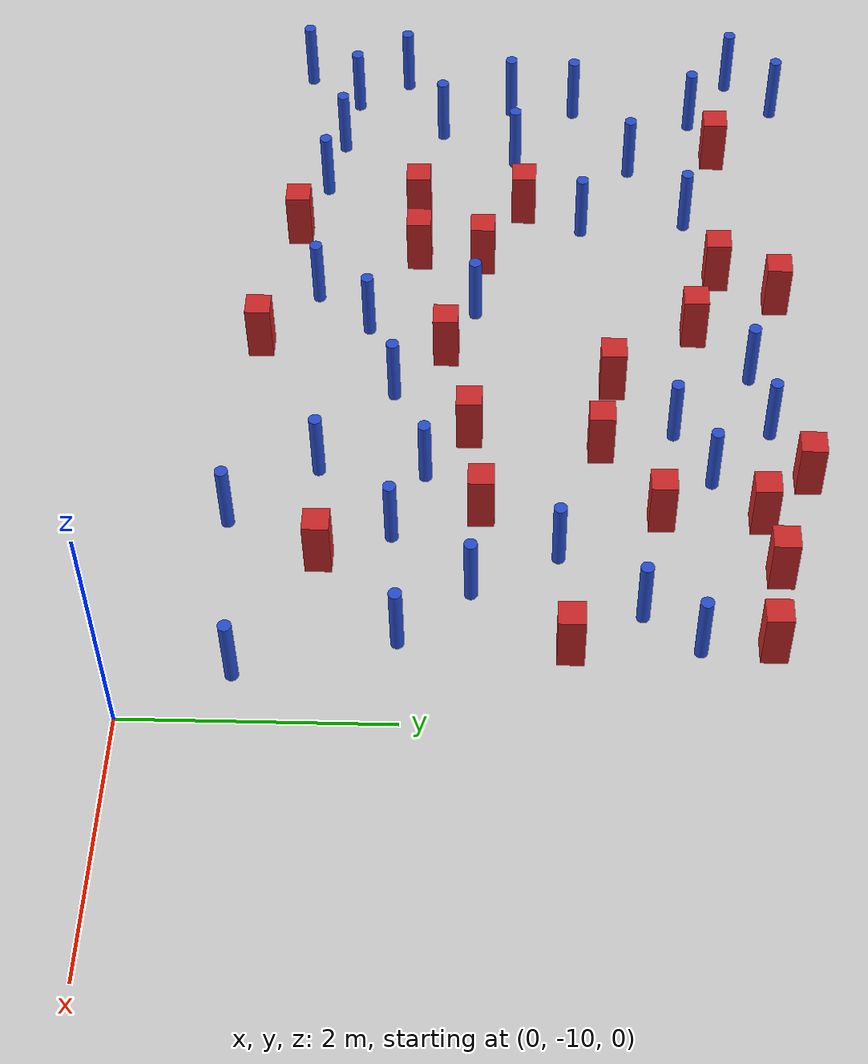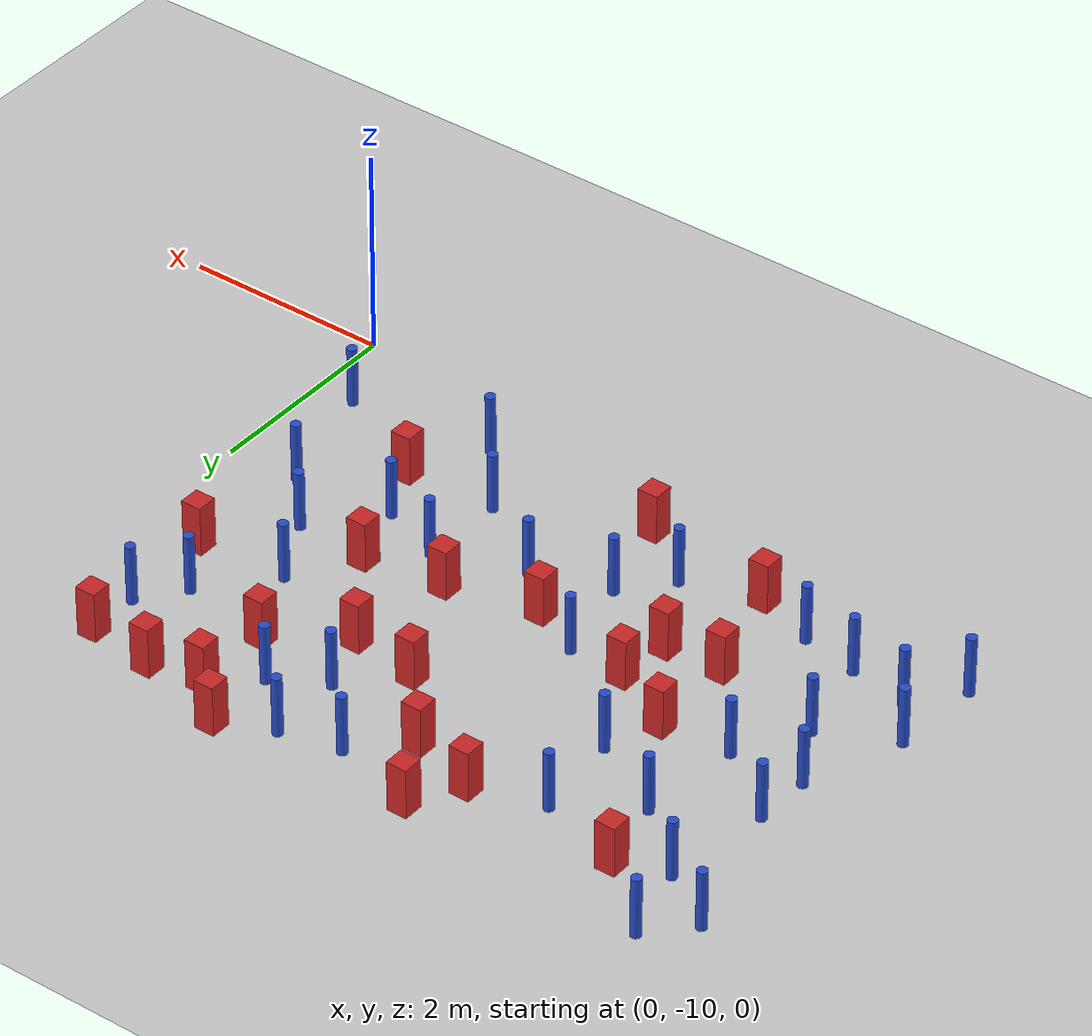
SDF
<sdf version="1.6">
 <world name="default">
  <model name="ground_plane">
   <static>1</static>
   <link name="link">
    <collision name="collision">
     <geometry><plane><normal>0 0 1</normal><size>100 100</size></plane></geometry>
     <surface><friction><ode><mu>100</mu><mu2>50</mu2></ode></friction></surface>
    </collision>
    <visual name="visual">
     <cast_shadows>0</cast_shadows>
     <geometry><plane><normal>0 0 1</normal><size>100 100</size></plane></geometry>
     <material>
      <ambient>1.0 1.0 1.0 1.0</ambient>
      <diffuse>0.8 0.8 0.8 1.0</diffuse>
      <specular>0.01 0.01 0.01 1.000000</specular>
     </material>
    </visual>
   </link>
  </model>
  <model name="square_post_obstacle3">
   <static>true</static>
   <pose>-0.633796371939 -6.8029401788 1.91545236811e-07 -7.35059704564e-06 1.12565212e-07 2.39332434364e-05</pose>
   <link name="link">
    <pose>0 0 0.25 0 -0 0</pose>
    <inertial>
     <mass>100</mass>
     <inertia>
      <ixx>0.166667</ixx>
      <ixy>0</ixy>
      <ixz>0</ixz>
      <iyy>0.166667</iyy>
      <iyz>0</iyz>
      <izz>0.166667</izz>
     </inertia>
    </inertial>
    <collision name="collision"><geometry><box><size>.2 .2 .5</size></box></geometry></collision>
    <visual name="visual">
     <geometry><box><size>.2 .2 .5</size></box></geometry>
     <material>
      <script><name>Gazebo/Red</name><uri>file://media/materials/scripts/gazebo.material</uri></script>
     </material>
    </visual>
   </link>
  </model>
  <model name="square_post_obstacle7">
   <static>true</static>
   <pose>-1.43258210814 -8.66387455334 1.91545236811e-07 -7.35059704564e-06 1.12565212e-07 2.39332434364e-05</pose>
   <link name="link">
    <pose>0 0 0.25 0 -0 0</pose>
    <inertial>
     <mass>100</mass>
     <inertia>
      <ixx>0.166667</ixx>
      <ixy>0</ixy>
      <ixz>0</ixz>
      <iyy>0.166667</iyy>
      <iyz>0</iyz>
      <izz>0.166667</izz>
     </inertia>
    </inertial>
    <collision name="collision"><geometry><box><size>.2 .2 .5</size></box></geometry></collision>
    <visual name="visual">
     <geometry><box><size>.2 .2 .5</size></box></geometry>
     <material>
      <script><name>Gazebo/Red</name><uri>file://media/materials/scripts/gazebo.material</uri></script>
     </material>
    </visual>
   </link>
  </model>
  <model name="square_post_obstacle8">
   <static>true</static>
   <pose>-2.53879268032 -6.56432131478 1.91545236811e-07 -7.35059704564e-06 1.12565212e-07 2.39332434364e-05</pose>
   <link name="link">
    <pose>0 0 0.25 0 -0 0</pose>
    <inertial>
     <mass>100</mass>
     <inertia>
      <ixx>0.166667</ixx>
      <ixy>0</ixy>
      <ixz>0</ixz>
      <iyy>0.166667</iyy>
      <iyz>0</iyz>
      <izz>0.166667</izz>
     </inertia>
    </inertial>
    <collision name="collision"><geometry><box><size>.2 .2 .5</size></box></geometry></collision>
    <visual name="visual">
     <geometry><box><size>.2 .2 .5</size></box></geometry>
     <material>
      <script><name>Gazebo/Red</name><uri>file://media/materials/scripts/gazebo.material</uri></script>
     </material>
    </visual>
   </link>
  </model>
  <model name="pole_obstacle6">
   <static>true</static>
   <pose>-6.56766878308 -6.76496728343 7.38925637345e-09 -8.47170692796e-08 1.24976764786e-08 -1.74513093032e-07</pose>
   <link name="link">
    <pose>0 0 0.3 0 -0 0</pose>
    <inertial>
     <mass>1</mass>
     <inertia><ixx>0.145833</ixx><ixy>0</ixy><ixz>0</ixz><iyy>0.145833</iyy><iyz>0</iyz><izz>0.125</izz></inertia>
    </inertial>
    <collision name="collision">
     <geometry><cylinder><radius>0.05</radius><length>.6</length></cylinder></geometry>
    </collision>
    <visual name="visual">
     <geometry><cylinder><radius>0.05</radius><length>.6</length></cylinder></geometry>
     <material>
      <script><name>Gazebo/Blue</name><uri>file://media/materials/scripts/gazebo.material</uri></script>
     </material>
    </visual>
   </link>
  </model>
  <model name="square_post_obstacle14">
   <static>true</static>
   <pose>-2.67159025851 -7.58281791326 1.91545236811e-07 -7.35059704564e-06 1.12565212e-07 2.39332434364e-05</pose>
   <link name="link">
    <pose>0 0 0.25 0 -0 0</pose>
    <inertial>
     <mass>100</mass>
     <inertia>
      <ixx>0.166667</ixx>
      <ixy>0</ixy>
      <ixz>0</ixz>
      <iyy>0.166667</iyy>
      <iyz>0</iyz>
      <izz>0.166667</izz>
     </inertia>
    </inertial>
    <collision name="collision"><geometry><box><size>.2 .2 .5</size></box></geometry></collision>
    <visual name="visual">
     <geometry><box><size>.2 .2 .5</size></box></geometry>
     <material>
      <script><name>Gazebo/Red</name><uri>file://media/materials/scripts/gazebo.material</uri></script>
     </material>
    </visual>
   </link>
  </model>
  <model name="square_post_obstacle15">
   <static>true</static>
   <pose>-5.23057087087 -7.19121798113 1.91545236811e-07 -7.35059704564e-06 1.12565212e-07 2.39332434364e-05</pose>
   <link name="link">
    <pose>0 0 0.25 0 -0 0</pose>
    <inertial>
     <mass>100</mass>
     <inertia>
      <ixx>0.166667</ixx>
      <ixy>0</ixy>
      <ixz>0</ixz>
      <iyy>0.166667</iyy>
      <iyz>0</iyz>
      <izz>0.166667</izz>
     </inertia>
    </inertial>
    <collision name="collision"><geometry><box><size>.2 .2 .5</size></box></geometry></collision>
    <visual name="visual">
     <geometry><box><size>.2 .2 .5</size></box></geometry>
     <material>
      <script><name>Gazebo/Red</name><uri>file://media/materials/scripts/gazebo.material</uri></script>
     </material>
    </visual>
   </link>
  </model>
  <model name="square_post_obstacle16">
   <static>true</static>
   <pose>-3.61521142471 -9.28834033057 1.91545236811e-07 -7.35059704564e-06 1.12565212e-07 2.39332434364e-05</pose>
   <link name="link">
    <pose>0 0 0.25 0 -0 0</pose>
    <inertial>
     <mass>100</mass>
     <inertia>
      <ixx>0.166667</ixx>
      <ixy>0</ixy>
      <ixz>0</ixz>
      <iyy>0.166667</iyy>
      <iyz>0</iyz>
      <izz>0.166667</izz>
     </inertia>
    </inertial>
    <collision name="collision"><geometry><box><size>.2 .2 .5</size></box></geometry></collision>
    <visual name="visual">
     <geometry><box><size>.2 .2 .5</size></box></geometry>
     <material>
      <script><name>Gazebo/Red</name><uri>file://media/materials/scripts/gazebo.material</uri></script>
     </material>
    </visual>
   </link>
  </model>
  <model name="square_post_obstacle22">
   <static>true</static>
   <pose>-4.64862744228 -8.05214864255 1.91545236811e-07 -7.35059704564e-06 1.12565212e-07 2.39332434364e-05</pose>
   <link name="link">
    <pose>0 0 0.25 0 -0 0</pose>
    <inertial>
     <mass>100</mass>
     <inertia>
      <ixx>0.166667</ixx>
      <ixy>0</ixy>
      <ixz>0</ixz>
      <iyy>0.166667</iyy>
      <iyz>0</iyz>
      <izz>0.166667</izz>
     </inertia>
    </inertial>
    <collision name="collision"><geometry><box><size>.2 .2 .5</size></box></geometry></collision>
    <visual name="visual">
     <geometry><box><size>.2 .2 .5</size></box></geometry>
     <material>
      <script><name>Gazebo/Red</name><uri>file://media/materials/scripts/gazebo.material</uri></script>
     </material>
    </visual>
   </link>
  </model>
  <model name="pole_obstacle14">
   <static>true</static>
   <pose>-5.02337090327 -6.70248612856 7.38925637345e-09 -8.47170692796e-08 1.24976764786e-08 -1.74513093032e-07</pose>
   <link name="link">
    <pose>0 0 0.3 0 -0 0</pose>
    <inertial>
     <mass>1</mass>
     <inertia><ixx>0.145833</ixx><ixy>0</ixy><ixz>0</ixz><iyy>0.145833</iyy><iyz>0</iyz><izz>0.125</izz></inertia>
    </inertial>
    <collision name="collision">
     <geometry><cylinder><radius>0.05</radius><length>.6</length></cylinder></geometry>
    </collision>
    <visual name="visual">
     <geometry><cylinder><radius>0.05</radius><length>.6</length></cylinder></geometry>
     <material>
      <script><name>Gazebo/Blue</name><uri>file://media/materials/scripts/gazebo.material</uri></script>
     </material>
    </visual>
   </link>
  </model>
  <model name="pole_obstacle16">
   <static>true</static>
   <pose>-6.42377104074 -5.73415301805 7.38925637345e-09 -8.47170692796e-08 1.24976764786e-08 -1.74513093032e-07</pose>
   <link name="link">
    <pose>0 0 0.3 0 -0 0</pose>
    <inertial>
     <mass>1</mass>
     <inertia><ixx>0.145833</ixx><ixy>0</ixy><ixz>0</ixz><iyy>0.145833</iyy><iyz>0</iyz><izz>0.125</izz></inertia>
    </inertial>
    <collision name="collision">
     <geometry><cylinder><radius>0.05</radius><length>.6</length></cylinder></geometry>
    </collision>
    <visual name="visual">
     <geometry><cylinder><radius>0.05</radius><length>.6</length></cylinder></geometry>
     <material>
      <script><name>Gazebo/Blue</name><uri>file://media/materials/scripts/gazebo.material</uri></script>
     </material>
    </visual>
   </link>
  </model>
  <model name="pole_obstacle18">
   <static>true</static>
   <pose>-2.72735987007 -5.99257990961 7.38925637345e-09 -8.47170692798e-08 1.24976765033e-08 -1.74513093019e-07</pose>
   <link name="link">
    <pose>0 0 0.3 0 -0 0</pose>
    <inertial>
     <mass>1</mass>
     <inertia><ixx>0.145833</ixx><ixy>0</ixy><ixz>0</ixz><iyy>0.145833</iyy><iyz>0</iyz><izz>0.125</izz></inertia>
    </inertial>
    <collision name="collision">
     <geometry><cylinder><radius>0.05</radius><length>.6</length></cylinder></geometry>
    </collision>
    <visual name="visual">
     <geometry><cylinder><radius>0.05</radius><length>.6</length></cylinder></geometry>
     <material>
      <script><name>Gazebo/Blue</name><uri>file://media/materials/scripts/gazebo.material</uri></script>
     </material>
    </visual>
   </link>
  </model>
  <model name="pole_obstacle27">
   <static>true</static>
   <pose>-5.50264626689 -8.87954455094 7.38925637345e-09 -8.471706928e-08 1.24976765081e-08 -1.74513093015e-07</pose>
   <link name="link">
    <pose>0 0 0.3 0 -0 0</pose>
    <inertial>
     <mass>1</mass>
     <inertia><ixx>0.145833</ixx><ixy>0</ixy><ixz>0</ixz><iyy>0.145833</iyy><iyz>0</iyz><izz>0.125</izz></inertia>
    </inertial>
    <collision name="collision">
     <geometry><cylinder><radius>0.05</radius><length>.6</length></cylinder></geometry>
    </collision>
    <visual name="visual">
     <geometry><cylinder><radius>0.05</radius><length>.6</length></cylinder></geometry>
     <material>
      <script><name>Gazebo/Blue</name><uri>file://media/materials/scripts/gazebo.material</uri></script>
     </material>
    </visual>
   </link>
  </model>
  <model name="square_post_obstacle33">
   <static>true</static>
   <pose>-4.93340911806 -9.07322151849 1.91545236811e-07 -7.35059704564e-06 1.12565212e-07 2.39332434364e-05</pose>
   <link name="link">
    <pose>0 0 0.25 0 -0 0</pose>
    <inertial>
     <mass>100</mass>
     <inertia>
      <ixx>0.166667</ixx>
      <ixy>0</ixy>
      <ixz>0</ixz>
      <iyy>0.166667</iyy>
      <iyz>0</iyz>
      <izz>0.166667</izz>
     </inertia>
    </inertial>
    <collision name="collision"><geometry><box><size>.2 .2 .5</size></box></geometry></collision>
    <visual name="visual">
     <geometry><box><size>.2 .2 .5</size></box></geometry>
     <material>
      <script><name>Gazebo/Red</name><uri>file://media/materials/scripts/gazebo.material</uri></script>
     </material>
    </visual>
   </link>
  </model>
  <model name="square_post_obstacle34">
   <static>true</static>
   <pose>-3.54040401404 -7.79301640265 1.91545236811e-07 -7.35059704564e-06 1.12565212e-07 2.39332434364e-05</pose>
   <link name="link">
    <pose>0 0 0.25 0 -0 0</pose>
    <inertial>
     <mass>100</mass>
     <inertia>
      <ixx>0.166667</ixx>
      <ixy>0</ixy>
      <ixz>0</ixz>
      <iyy>0.166667</iyy>
      <iyz>0</iyz>
      <izz>0.166667</izz>
     </inertia>
    </inertial>
    <collision name="collision"><geometry><box><size>.2 .2 .5</size></box></geometry></collision>
    <visual name="visual">
     <geometry><box><size>.2 .2 .5</size></box></geometry>
     <material>
      <script><name>Gazebo/Red</name><uri>file://media/materials/scripts/gazebo.material</uri></script>
     </material>
    </visual>
   </link>
  </model>
  <model name="pole_obstacle32">
   <static>true</static>
   <pose>-3.82748670154 -8.42909397978 7.38925637345e-09 -8.47170692799e-08 1.24976765012e-08 -1.74513093021e-07</pose>
   <link name="link">
    <pose>0 0 0.3 0 -0 0</pose>
    <inertial>
     <mass>1</mass>
     <inertia><ixx>0.145833</ixx><ixy>0</ixy><ixz>0</ixz><iyy>0.145833</iyy><iyz>0</iyz><izz>0.125</izz></inertia>
    </inertial>
    <collision name="collision">
     <geometry><cylinder><radius>0.05</radius><length>.6</length></cylinder></geometry>
    </collision>
    <visual name="visual">
     <geometry><cylinder><radius>0.05</radius><length>.6</length></cylinder></geometry>
     <material>
      <script><name>Gazebo/Blue</name><uri>file://media/materials/scripts/gazebo.material</uri></script>
     </material>
    </visual>
   </link>
  </model>
  <model name="pole_obstacle37">
   <static>true</static>
   <pose>-6.58584887799 -7.31621391962 7.38925637345e-09 -8.47170692796e-08 1.24976764786e-08 -1.74513093032e-07</pose>
   <link name="link">
    <pose>0 0 0.3 0 -0 0</pose>
    <inertial>
     <mass>1</mass>
     <inertia><ixx>0.145833</ixx><ixy>0</ixy><ixz>0</ixz><iyy>0.145833</iyy><iyz>0</iyz><izz>0.125</izz></inertia>
    </inertial>
    <collision name="collision">
     <geometry><cylinder><radius>0.05</radius><length>.6</length></cylinder></geometry>
    </collision>
    <visual name="visual">
     <geometry><cylinder><radius>0.05</radius><length>.6</length></cylinder></geometry>
     <material>
      <script><name>Gazebo/Blue</name><uri>file://media/materials/scripts/gazebo.material</uri></script>
     </material>
    </visual>
   </link>
  </model>
  <model name="pole_obstacle38">
   <static>true</static>
   <pose>-0.970440165887 -6.27427404457 7.38925637345e-09 -8.47170692799e-08 1.2497676509e-08 -1.74513093015e-07</pose>
   <link name="link">
    <pose>0 0 0.3 0 -0 0</pose>
    <inertial>
     <mass>1</mass>
     <inertia><ixx>0.145833</ixx><ixy>0</ixy><ixz>0</ixz><iyy>0.145833</iyy><iyz>0</iyz><izz>0.125</izz></inertia>
    </inertial>
    <collision name="collision">
     <geometry><cylinder><radius>0.05</radius><length>.6</length></cylinder></geometry>
    </collision>
    <visual name="visual">
     <geometry><cylinder><radius>0.05</radius><length>.6</length></cylinder></geometry>
     <material>
      <script><name>Gazebo/Blue</name><uri>file://media/materials/scripts/gazebo.material</uri></script>
     </material>
    </visual>
   </link>
  </model>
  <model name="pole_obstacle40">
   <static>true</static>
   <pose>-6.25011475079 -7.91060250939 7.38925637345e-09 -8.47170692796e-08 1.24976764786e-08 -1.74513093032e-07</pose>
   <link name="link">
    <pose>0 0 0.3 0 -0 0</pose>
    <inertial>
     <mass>1</mass>
     <inertia><ixx>0.145833</ixx><ixy>0</ixy><ixz>0</ixz><iyy>0.145833</iyy><iyz>0</iyz><izz>0.125</izz></inertia>
    </inertial>
    <collision name="collision">
     <geometry><cylinder><radius>0.05</radius><length>.6</length></cylinder></geometry>
    </collision>
    <visual name="visual">
     <geometry><cylinder><radius>0.05</radius><length>.6</length></cylinder></geometry>
     <material>
      <script><name>Gazebo/Blue</name><uri>file://media/materials/scripts/gazebo.material</uri></script>
     </material>
    </visual>
   </link>
  </model>
  <model name="pole_obstacle41">
   <static>true</static>
   <pose>-6.99080040517 -9.12771972824 7.38925637345e-09 -8.471706928e-08 1.24976765081e-08 -1.74513093015e-07</pose>
   <link name="link">
    <pose>0 0 0.3 0 -0 0</pose>
    <inertial>
     <mass>1</mass>
     <inertia><ixx>0.145833</ixx><ixy>0</ixy><ixz>0</ixz><iyy>0.145833</iyy><iyz>0</iyz><izz>0.125</izz></inertia>
    </inertial>
    <collision name="collision">
     <geometry><cylinder><radius>0.05</radius><length>.6</length></cylinder></geometry>
    </collision>
    <visual name="visual">
     <geometry><cylinder><radius>0.05</radius><length>.6</length></cylinder></geometry>
     <material>
      <script><name>Gazebo/Blue</name><uri>file://media/materials/scripts/gazebo.material</uri></script>
     </material>
    </visual>
   </link>
  </model>
  <model name="pole_obstacle43">
   <static>true</static>
   <pose>-6.93207534338 -8.24968939106 7.38925637345e-09 -8.471706928e-08 1.24976765081e-08 -1.74513093015e-07</pose>
   <link name="link">
    <pose>0 0 0.3 0 -0 0</pose>
    <inertial>
     <mass>1</mass>
     <inertia><ixx>0.145833</ixx><ixy>0</ixy><ixz>0</ixz><iyy>0.145833</iyy><iyz>0</iyz><izz>0.125</izz></inertia>
    </inertial>
    <collision name="collision">
     <geometry><cylinder><radius>0.05</radius><length>.6</length></cylinder></geometry>
    </collision>
    <visual name="visual">
     <geometry><cylinder><radius>0.05</radius><length>.6</length></cylinder></geometry>
     <material>
      <script><name>Gazebo/Blue</name><uri>file://media/materials/scripts/gazebo.material</uri></script>
     </material>
    </visual>
   </link>
  </model>
  <model name="square_post_obstacle52">
   <static>true</static>
   <pose>-1.88998071862 -7.47177497546 1.91545236811e-07 -7.35059704564e-06 1.12565212e-07 2.39332434364e-05</pose>
   <link name="link">
    <pose>0 0 0.25 0 -0 0</pose>
    <inertial>
     <mass>100</mass>
     <inertia>
      <ixx>0.166667</ixx>
      <ixy>0</ixy>
      <ixz>0</ixz>
      <iyy>0.166667</iyy>
      <iyz>0</iyz>
      <izz>0.166667</izz>
     </inertia>
    </inertial>
    <collision name="collision"><geometry><box><size>.2 .2 .5</size></box></geometry></collision>
    <visual name="visual">
     <geometry><box><size>.2 .2 .5</size></box></geometry>
     <material>
      <script><name>Gazebo/Red</name><uri>file://media/materials/scripts/gazebo.material</uri></script>
     </material>
    </visual>
   </link>
  </model>
  <model name="pole_obstacle54">
   <static>true</static>
   <pose>-6.63457276247 -8.67885523274 7.38925637345e-09 -8.471706928e-08 1.24976765081e-08 -1.74513093015e-07</pose>
   <link name="link">
    <pose>0 0 0.3 0 -0 0</pose>
    <inertial>
     <mass>1</mass>
     <inertia><ixx>0.145833</ixx><ixy>0</ixy><ixz>0</ixz><iyy>0.145833</iyy><iyz>0</iyz><izz>0.125</izz></inertia>
    </inertial>
    <collision name="collision">
     <geometry><cylinder><radius>0.05</radius><length>.6</length></cylinder></geometry>
    </collision>
    <visual name="visual">
     <geometry><cylinder><radius>0.05</radius><length>.6</length></cylinder></geometry>
     <material>
      <script><name>Gazebo/Blue</name><uri>file://media/materials/scripts/gazebo.material</uri></script>
     </material>
    </visual>
   </link>
  </model>
  <model name="pole_obstacle58">
   <static>true</static>
   <pose>-2.30951688588 -8.72986847748 7.38925637345e-09 -8.47170692793e-08 1.24976764408e-08 -1.74513093041e-07</pose>
   <link name="link">
    <pose>0 0 0.3 0 -0 0</pose>
    <inertial>
     <mass>1</mass>
     <inertia><ixx>0.145833</ixx><ixy>0</ixy><ixz>0</ixz><iyy>0.145833</iyy><iyz>0</iyz><izz>0.125</izz></inertia>
    </inertial>
    <collision name="collision">
     <geometry><cylinder><radius>0.05</radius><length>.6</length></cylinder></geometry>
    </collision>
    <visual name="visual">
     <geometry><cylinder><radius>0.05</radius><length>.6</length></cylinder></geometry>
     <material>
      <script><name>Gazebo/Blue</name><uri>file://media/materials/scripts/gazebo.material</uri></script>
     </material>
    </visual>
   </link>
  </model>
  <model name="pole_obstacle60">
   <static>true</static>
   <pose>-0.392709295785 -9.20889978899 7.38925637345e-09 -8.47170692796e-08 1.24976764724e-08 -1.74513093036e-07</pose>
   <link name="link">
    <pose>0 0 0.3 0 -0 0</pose>
    <inertial>
     <mass>1</mass>
     <inertia><ixx>0.145833</ixx><ixy>0</ixy><ixz>0</ixz><iyy>0.145833</iyy><iyz>0</iyz><izz>0.125</izz></inertia>
    </inertial>
    <collision name="collision">
     <geometry><cylinder><radius>0.05</radius><length>.6</length></cylinder></geometry>
    </collision>
    <visual name="visual">
     <geometry><cylinder><radius>0.05</radius><length>.6</length></cylinder></geometry>
     <material>
      <script><name>Gazebo/Blue</name><uri>file://media/materials/scripts/gazebo.material</uri></script>
     </material>
    </visual>
   </link>
  </model>
  <model name="pole_obstacle61">
   <static>true</static>
   <pose>-4.18943113816 -8.86491891618 7.38925637345e-09 -8.471706928e-08 1.24976765081e-08 -1.74513093015e-07</pose>
   <link name="link">
    <pose>0 0 0.3 0 -0 0</pose>
    <inertial>
     <mass>1</mass>
     <inertia><ixx>0.145833</ixx><ixy>0</ixy><ixz>0</ixz><iyy>0.145833</iyy><iyz>0</iyz><izz>0.125</izz></inertia>
    </inertial>
    <collision name="collision">
     <geometry><cylinder><radius>0.05</radius><length>.6</length></cylinder></geometry>
    </collision>
    <visual name="visual">
     <geometry><cylinder><radius>0.05</radius><length>.6</length></cylinder></geometry>
     <material>
      <script><name>Gazebo/Blue</name><uri>file://media/materials/scripts/gazebo.material</uri></script>
     </material>
    </visual>
   </link>
  </model>
  <model name="square_post_obstacle71">
   <static>true</static>
   <pose>-3.20281780658 -6.46564683576 1.91545236811e-07 -7.35059704564e-06 1.12565212e-07 2.39332434364e-05</pose>
   <link name="link">
    <pose>0 0 0.25 0 -0 0</pose>
    <inertial>
     <mass>100</mass>
     <inertia>
      <ixx>0.166667</ixx>
      <ixy>0</ixy>
      <ixz>0</ixz>
      <iyy>0.166667</iyy>
      <iyz>0</iyz>
      <izz>0.166667</izz>
     </inertia>
    </inertial>
    <collision name="collision"><geometry><box><size>.2 .2 .5</size></box></geometry></collision>
    <visual name="visual">
     <geometry><box><size>.2 .2 .5</size></box></geometry>
     <material>
      <script><name>Gazebo/Red</name><uri>file://media/materials/scripts/gazebo.material</uri></script>
     </material>
    </visual>
   </link>
  </model>
  <model name="pole_obstacle76">
   <static>true</static>
   <pose>-1.14901300805 -7.52991719057 7.38925637345e-09 -8.47170692799e-08 1.24976765033e-08 -1.74513093018e-07</pose>
   <link name="link">
    <pose>0 0 0.3 0 -0 0</pose>
    <inertial>
     <mass>1</mass>
     <inertia><ixx>0.145833</ixx><ixy>0</ixy><ixz>0</ixz><iyy>0.145833</iyy><iyz>0</iyz><izz>0.125</izz></inertia>
    </inertial>
    <collision name="collision">
     <geometry><cylinder><radius>0.05</radius><length>.6</length></cylinder></geometry>
    </collision>
    <visual name="visual">
     <geometry><cylinder><radius>0.05</radius><length>.6</length></cylinder></geometry>
     <material>
      <script><name>Gazebo/Blue</name><uri>file://media/materials/scripts/gazebo.material</uri></script>
     </material>
    </visual>
   </link>
  </model>
  <model name="pole_obstacle80">
   <static>true</static>
   <pose>-5.88958328572 -7.27211296316 7.38925637345e-09 -8.47170692796e-08 1.24976764786e-08 -1.74513093032e-07</pose>
   <link name="link">
    <pose>0 0 0.3 0 -0 0</pose>
    <inertial>
     <mass>1</mass>
     <inertia><ixx>0.145833</ixx><ixy>0</ixy><ixz>0</ixz><iyy>0.145833</iyy><iyz>0</iyz><izz>0.125</izz></inertia>
    </inertial>
    <collision name="collision">
     <geometry><cylinder><radius>0.05</radius><length>.6</length></cylinder></geometry>
    </collision>
    <visual name="visual">
     <geometry><cylinder><radius>0.05</radius><length>.6</length></cylinder></geometry>
     <material>
      <script><name>Gazebo/Blue</name><uri>file://media/materials/scripts/gazebo.material</uri></script>
     </material>
    </visual>
   </link>
  </model>
  <model name="pole_obstacle81">
   <static>true</static>
   <pose>-0.670090253356 -5.86630423676 7.38925637345e-09 -8.471706928e-08 1.24976765086e-08 -1.74513093015e-07</pose>
   <link name="link">
    <pose>0 0 0.3 0 -0 0</pose>
    <inertial>
     <mass>1</mass>
     <inertia><ixx>0.145833</ixx><ixy>0</ixy><ixz>0</ixz><iyy>0.145833</iyy><iyz>0</iyz><izz>0.125</izz></inertia>
    </inertial>
    <collision name="collision">
     <geometry><cylinder><radius>0.05</radius><length>.6</length></cylinder></geometry>
    </collision>
    <visual name="visual">
     <geometry><cylinder><radius>0.05</radius><length>.6</length></cylinder></geometry>
     <material>
      <script><name>Gazebo/Blue</name><uri>file://media/materials/scripts/gazebo.material</uri></script>
     </material>
    </visual>
   </link>
  </model>
  <model name="pole_obstacle82">
   <static>true</static>
   <pose>-4.01854339581 -7.57125822194 7.38925637345e-09 -8.47170692795e-08 1.24976764731e-08 -1.74513093035e-07</pose>
   <link name="link">
    <pose>0 0 0.3 0 -0 0</pose>
    <inertial>
     <mass>1</mass>
     <inertia><ixx>0.145833</ixx><ixy>0</ixy><ixz>0</ixz><iyy>0.145833</iyy><iyz>0</iyz><izz>0.125</izz></inertia>
    </inertial>
    <collision name="collision">
     <geometry><cylinder><radius>0.05</radius><length>.6</length></cylinder></geometry>
    </collision>
    <visual name="visual">
     <geometry><cylinder><radius>0.05</radius><length>.6</length></cylinder></geometry>
     <material>
      <script><name>Gazebo/Blue</name><uri>file://media/materials/scripts/gazebo.material</uri></script>
     </material>
    </visual>
   </link>
  </model>
  <model name="pole_obstacle86">
   <static>true</static>
   <pose>-6.97920305381 -5.37876725271 7.38925637345e-09 -8.47170692796e-08 1.24976764786e-08 -1.74513093032e-07</pose>
   <link name="link">
    <pose>0 0 0.3 0 -0 0</pose>
    <inertial>
     <mass>1</mass>
     <inertia><ixx>0.145833</ixx><ixy>0</ixy><ixz>0</ixz><iyy>0.145833</iyy><iyz>0</iyz><izz>0.125</izz></inertia>
    </inertial>
    <collision name="collision">
     <geometry><cylinder><radius>0.05</radius><length>.6</length></cylinder></geometry>
    </collision>
    <visual name="visual">
     <geometry><cylinder><radius>0.05</radius><length>.6</length></cylinder></geometry>
     <material>
      <script><name>Gazebo/Blue</name><uri>file://media/materials/scripts/gazebo.material</uri></script>
     </material>
    </visual>
   </link>
  </model>
  <model name="pole_obstacle87">
   <static>true</static>
   <pose>-5.78538852572 -6.28519714939 7.38925637345e-09 -8.47170692796e-08 1.24976764786e-08 -1.74513093032e-07</pose>
   <link name="link">
    <pose>0 0 0.3 0 -0 0</pose>
    <inertial>
     <mass>1</mass>
     <inertia><ixx>0.145833</ixx><ixy>0</ixy><ixz>0</ixz><iyy>0.145833</iyy><iyz>0</iyz><izz>0.125</izz></inertia>
    </inertial>
    <collision name="collision">
     <geometry><cylinder><radius>0.05</radius><length>.6</length></cylinder></geometry>
    </collision>
    <visual name="visual">
     <geometry><cylinder><radius>0.05</radius><length>.6</length></cylinder></geometry>
     <material>
      <script><name>Gazebo/Blue</name><uri>file://media/materials/scripts/gazebo.material</uri></script>
     </material>
    </visual>
   </link>
  </model>
  <model name="square_post_obstacle82">
   <static>true</static>
   <pose>-0.687688146487 -5.34878532735 1.91545236811e-07 -7.35059704564e-06 1.12565212e-07 2.39332434364e-05</pose>
   <link name="link">
    <pose>0 0 0.25 0 -0 0</pose>
    <inertial>
     <mass>100</mass>
     <inertia>
      <ixx>0.166667</ixx>
      <ixy>0</ixy>
      <ixz>0</ixz>
      <iyy>0.166667</iyy>
      <iyz>0</iyz>
      <izz>0.166667</izz>
     </inertia>
    </inertial>
    <collision name="collision"><geometry><box><size>.2 .2 .5</size></box></geometry></collision>
    <visual name="visual">
     <geometry><box><size>.2 .2 .5</size></box></geometry>
     <material>
      <script><name>Gazebo/Red</name><uri>file://media/materials/scripts/gazebo.material</uri></script>
     </material>
    </visual>
   </link>
  </model>
  <model name="pole_obstacle99">
   <static>true</static>
   <pose>-6.61677238052 -4.98991201609 7.38925637345e-09 -8.47170692796e-08 1.24976764786e-08 -1.74513093032e-07</pose>
   <link name="link">
    <pose>0 0 0.3 0 -0 0</pose>
    <inertial>
     <mass>1</mass>
     <inertia><ixx>0.145833</ixx><ixy>0</ixy><ixz>0</ixz><iyy>0.145833</iyy><iyz>0</iyz><izz>0.125</izz></inertia>
    </inertial>
    <collision name="collision">
     <geometry><cylinder><radius>0.05</radius><length>.6</length></cylinder></geometry>
    </collision>
    <visual name="visual">
     <geometry><cylinder><radius>0.05</radius><length>.6</length></cylinder></geometry>
     <material>
      <script><name>Gazebo/Blue</name><uri>file://media/materials/scripts/gazebo.material</uri></script>
     </material>
    </visual>
   </link>
  </model>
  <model name="pole_obstacle101">
   <static>true</static>
   <pose>-3.33422929249 -5.36922510855 7.38925637345e-09 -8.47170692794e-08 1.24976764468e-08 -1.7451309304e-07</pose>
   <link name="link">
    <pose>0 0 0.3 0 -0 0</pose>
    <inertial>
     <mass>1</mass>
     <inertia><ixx>0.145833</ixx><ixy>0</ixy><ixz>0</ixz><iyy>0.145833</iyy><iyz>0</iyz><izz>0.125</izz></inertia>
    </inertial>
    <collision name="collision">
     <geometry><cylinder><radius>0.05</radius><length>.6</length></cylinder></geometry>
    </collision>
    <visual name="visual">
     <geometry><cylinder><radius>0.05</radius><length>.6</length></cylinder></geometry>
     <material>
      <script><name>Gazebo/Blue</name><uri>file://media/materials/scripts/gazebo.material</uri></script>
     </material>
    </visual>
   </link>
  </model>
  <model name="square_post_obstacle118">
   <static>true</static>
   <pose>-4.44922197558 -5.58900218352 1.91545236811e-07 -7.35059704564e-06 1.12565212e-07 2.39332434364e-05</pose>
   <link name="link">
    <pose>0 0 0.25 0 -0 0</pose>
    <inertial>
     <mass>100</mass>
     <inertia>
      <ixx>0.166667</ixx>
      <ixy>0</ixy>
      <ixz>0</ixz>
      <iyy>0.166667</iyy>
      <iyz>0</iyz>
      <izz>0.166667</izz>
     </inertia>
    </inertial>
    <collision name="collision"><geometry><box><size>.2 .2 .5</size></box></geometry></collision>
    <visual name="visual">
     <geometry><box><size>.2 .2 .5</size></box></geometry>
     <material>
      <script><name>Gazebo/Red</name><uri>file://media/materials/scripts/gazebo.material</uri></script>
     </material>
    </visual>
   </link>
  </model>
  <model name="square_post_obstacle119">
   <static>true</static>
   <pose>-1.35162031976 -5.25204769047 1.91545236811e-07 -7.35059704564e-06 1.12565212e-07 2.39332434364e-05</pose>
   <link name="link">
    <pose>0 0 0.25 0 -0 0</pose>
    <inertial>
     <mass>100</mass>
     <inertia>
      <ixx>0.166667</ixx>
      <ixy>0</ixy>
      <ixz>0</ixz>
      <iyy>0.166667</iyy>
      <iyz>0</iyz>
      <izz>0.166667</izz>
     </inertia>
    </inertial>
    <collision name="collision"><geometry><box><size>.2 .2 .5</size></box></geometry></collision>
    <visual name="visual">
     <geometry><box><size>.2 .2 .5</size></box></geometry>
     <material>
      <script><name>Gazebo/Red</name><uri>file://media/materials/scripts/gazebo.material</uri></script>
     </material>
    </visual>
   </link>
  </model>
  <model name="square_post_obstacle136">
   <static>true</static>
   <pose>-5.21066466181 -8.07925274323 1.91545236811e-07 -7.35059704564e-06 1.12565212e-07 2.39332434364e-05</pose>
   <link name="link">
    <pose>0 0 0.25 0 -0 0</pose>
    <inertial>
     <mass>100</mass>
     <inertia>
      <ixx>0.166667</ixx>
      <ixy>0</ixy>
      <ixz>0</ixz>
      <iyy>0.166667</iyy>
      <iyz>0</iyz>
      <izz>0.166667</izz>
     </inertia>
    </inertial>
    <collision name="collision"><geometry><box><size>.2 .2 .5</size></box></geometry></collision>
    <visual name="visual">
     <geometry><box><size>.2 .2 .5</size></box></geometry>
     <material>
      <script><name>Gazebo/Red</name><uri>file://media/materials/scripts/gazebo.material</uri></script>
     </material>
    </visual>
   </link>
  </model>
  <model name="pole_obstacle149">
   <static>true</static>
   <pose>-5.11919383933 -5.82446947506 7.38925637345e-09 -8.47170692796e-08 1.24976764786e-08 -1.74513093032e-07</pose>
   <link name="link">
    <pose>0 0 0.3 0 -0 0</pose>
    <inertial>
     <mass>1</mass>
     <inertia><ixx>0.145833</ixx><ixy>0</ixy><ixz>0</ixz><iyy>0.145833</iyy><iyz>0</iyz><izz>0.125</izz></inertia>
    </inertial>
    <collision name="collision">
     <geometry><cylinder><radius>0.05</radius><length>.6</length></cylinder></geometry>
    </collision>
    <visual name="visual">
     <geometry><cylinder><radius>0.05</radius><length>.6</length></cylinder></geometry>
     <material>
      <script><name>Gazebo/Blue</name><uri>file://media/materials/scripts/gazebo.material</uri></script>
     </material>
    </visual>
   </link>
  </model>
  <model name="square_post_obstacle142">
   <static>true</static>
   <pose>-1.86868089193 -6.11691269969 1.91545236811e-07 -7.35059704564e-06 1.12565212e-07 2.39332434364e-05</pose>
   <link name="link">
    <pose>0 0 0.25 0 -0 0</pose>
    <inertial>
     <mass>100</mass>
     <inertia>
      <ixx>0.166667</ixx>
      <ixy>0</ixy>
      <ixz>0</ixz>
      <iyy>0.166667</iyy>
      <iyz>0</iyz>
      <izz>0.166667</izz>
     </inertia>
    </inertial>
    <collision name="collision"><geometry><box><size>.2 .2 .5</size></box></geometry></collision>
    <visual name="visual">
     <geometry><box><size>.2 .2 .5</size></box></geometry>
     <material>
      <script><name>Gazebo/Red</name><uri>file://media/materials/scripts/gazebo.material</uri></script>
     </material>
    </visual>
   </link>
  </model>
  <model name="square_post_obstacle152">
   <static>true</static>
   <pose>-4.59939596288 -7.52358023745 1.91545236811e-07 -7.35059704564e-06 1.12565212e-07 2.39332434364e-05</pose>
   <link name="link">
    <pose>0 0 0.25 0 -0 0</pose>
    <inertial>
     <mass>100</mass>
     <inertia>
      <ixx>0.166667</ixx>
      <ixy>0</ixy>
      <ixz>0</ixz>
      <iyy>0.166667</iyy>
      <iyz>0</iyz>
      <izz>0.166667</izz>
     </inertia>
    </inertial>
    <collision name="collision"><geometry><box><size>.2 .2 .5</size></box></geometry></collision>
    <visual name="visual">
     <geometry><box><size>.2 .2 .5</size></box></geometry>
     <material>
      <script><name>Gazebo/Red</name><uri>file://media/materials/scripts/gazebo.material</uri></script>
     </material>
    </visual>
   </link>
  </model>
  <model name="pole_obstacle169">
   <static>true</static>
   <pose>-3.10698308516 -8.18904370654 7.38925637345e-09 -8.47170692793e-08 1.24976764408e-08 -1.74513093041e-07</pose>
   <link name="link">
    <pose>0 0 0.3 0 -0 0</pose>
    <inertial>
     <mass>1</mass>
     <inertia><ixx>0.145833</ixx><ixy>0</ixy><ixz>0</ixz><iyy>0.145833</iyy><iyz>0</iyz><izz>0.125</izz></inertia>
    </inertial>
    <collision name="collision">
     <geometry><cylinder><radius>0.05</radius><length>.6</length></cylinder></geometry>
    </collision>
    <visual name="visual">
     <geometry><cylinder><radius>0.05</radius><length>.6</length></cylinder></geometry>
     <material>
      <script><name>Gazebo/Blue</name><uri>file://media/materials/scripts/gazebo.material</uri></script>
     </material>
    </visual>
   </link>
  </model>
  <model name="pole_obstacle171">
   <static>true</static>
   <pose>-6.064112689 -8.7708423499 7.38925637345e-09 -8.471706928e-08 1.24976765081e-08 -1.74513093015e-07</pose>
   <link name="link">
    <pose>0 0 0.3 0 -0 0</pose>
    <inertial>
     <mass>1</mass>
     <inertia><ixx>0.145833</ixx><ixy>0</ixy><ixz>0</ixz><iyy>0.145833</iyy><iyz>0</iyz><izz>0.125</izz></inertia>
    </inertial>
    <collision name="collision">
     <geometry><cylinder><radius>0.05</radius><length>.6</length></cylinder></geometry>
    </collision>
    <visual name="visual">
     <geometry><cylinder><radius>0.05</radius><length>.6</length></cylinder></geometry>
     <material>
      <script><name>Gazebo/Blue</name><uri>file://media/materials/scripts/gazebo.material</uri></script>
     </material>
    </visual>
   </link>
  </model>
  <model name="pole_obstacle173">
   <static>true</static>
   <pose>-0.698944735028 -8.04712865572 7.38925637345e-09 -8.47170692807e-08 1.24976765559e-08 -1.74513093001e-07</pose>
   <link name="link">
    <pose>0 0 0.3 0 -0 0</pose>
    <inertial>
     <mass>1</mass>
     <inertia><ixx>0.145833</ixx><ixy>0</ixy><ixz>0</ixz><iyy>0.145833</iyy><iyz>0</iyz><izz>0.125</izz></inertia>
    </inertial>
    <collision name="collision">
     <geometry><cylinder><radius>0.05</radius><length>.6</length></cylinder></geometry>
    </collision>
    <visual name="visual">
     <geometry><cylinder><radius>0.05</radius><length>.6</length></cylinder></geometry>
     <material>
      <script><name>Gazebo/Blue</name><uri>file://media/materials/scripts/gazebo.material</uri></script>
     </material>
    </visual>
   </link>
  </model>
  <model name="pole_obstacle185">
   <static>true</static>
   <pose>-1.4960021908 -6.88794200953 7.38925637345e-09 -8.47170692799e-08 1.24976765033e-08 -1.74513093018e-07</pose>
   <link name="link">
    <pose>0 0 0.3 0 -0 0</pose>
    <inertial>
     <mass>1</mass>
     <inertia><ixx>0.145833</ixx><ixy>0</ixy><ixz>0</ixz><iyy>0.145833</iyy><iyz>0</iyz><izz>0.125</izz></inertia>
    </inertial>
    <collision name="collision">
     <geometry><cylinder><radius>0.05</radius><length>.6</length></cylinder></geometry>
    </collision>
    <visual name="visual">
     <geometry><cylinder><radius>0.05</radius><length>.6</length></cylinder></geometry>
     <material>
      <script><name>Gazebo/Blue</name><uri>file://media/materials/scripts/gazebo.material</uri></script>
     </material>
    </visual>
   </link>
  </model>
  <model name="pole_obstacle187">
   <static>true</static>
   <pose>-2.24551582969 -5.71447407146 7.38925637345e-09 -8.47170692798e-08 1.24976765033e-08 -1.74513093019e-07</pose>
   <link name="link">
    <pose>0 0 0.3 0 -0 0</pose>
    <inertial>
     <mass>1</mass>
     <inertia><ixx>0.145833</ixx><ixy>0</ixy><ixz>0</ixz><iyy>0.145833</iyy><iyz>0</iyz><izz>0.125</izz></inertia>
    </inertial>
    <collision name="collision">
     <geometry><cylinder><radius>0.05</radius><length>.6</length></cylinder></geometry>
    </collision>
    <visual name="visual">
     <geometry><cylinder><radius>0.05</radius><length>.6</length></cylinder></geometry>
     <material>
      <script><name>Gazebo/Blue</name><uri>file://media/materials/scripts/gazebo.material</uri></script>
     </material>
    </visual>
   </link>
  </model>
  <model name="square_post_obstacle174">
   <static>true</static>
   <pose>-2.26246486845 -4.98576542496 1.91545236811e-07 -7.35059704564e-06 1.12565212e-07 2.39332434364e-05</pose>
   <link name="link">
    <pose>0 0 0.25 0 -0 0</pose>
    <inertial>
     <mass>100</mass>
     <inertia>
      <ixx>0.166667</ixx>
      <ixy>0</ixy>
      <ixz>0</ixz>
      <iyy>0.166667</iyy>
      <iyz>0</iyz>
      <izz>0.166667</izz>
     </inertia>
    </inertial>
    <collision name="collision"><geometry><box><size>.2 .2 .5</size></box></geometry></collision>
    <visual name="visual">
     <geometry><box><size>.2 .2 .5</size></box></geometry>
     <material>
      <script><name>Gazebo/Red</name><uri>file://media/materials/scripts/gazebo.material</uri></script>
     </material>
    </visual>
   </link>
  </model>
  <model name="square_post_obstacle187">
   <static>true</static>
   <pose>-5.95908378013 -5.54909423774 1.91545236811e-07 -7.35059704564e-06 1.12565212e-07 2.39332434364e-05</pose>
   <link name="link">
    <pose>0 0 0.25 0 -0 0</pose>
    <inertial>
     <mass>100</mass>
     <inertia>
      <ixx>0.166667</ixx>
      <ixy>0</ixy>
      <ixz>0</ixz>
      <iyy>0.166667</iyy>
      <iyz>0</iyz>
      <izz>0.166667</izz>
     </inertia>
    </inertial>
    <collision name="collision"><geometry><box><size>.2 .2 .5</size></box></geometry></collision>
    <visual name="visual">
     <geometry><box><size>.2 .2 .5</size></box></geometry>
     <material>
      <script><name>Gazebo/Red</name><uri>file://media/materials/scripts/gazebo.material</uri></script>
     </material>
    </visual>
   </link>
  </model>
  <model name="square_post_obstacle188">
   <static>true</static>
   <pose>-1.86334760525 -5.35197172949 1.91545236811e-07 -7.35059704564e-06 1.12565212e-07 2.39332434364e-05</pose>
   <link name="link">
    <pose>0 0 0.25 0 -0 0</pose>
    <inertial>
     <mass>100</mass>
     <inertia>
      <ixx>0.166667</ixx>
      <ixy>0</ixy>
      <ixz>0</ixz>
      <iyy>0.166667</iyy>
      <iyz>0</iyz>
      <izz>0.166667</izz>
     </inertia>
    </inertial>
    <collision name="collision"><geometry><box><size>.2 .2 .5</size></box></geometry></collision>
    <visual name="visual">
     <geometry><box><size>.2 .2 .5</size></box></geometry>
     <material>
      <script><name>Gazebo/Red</name><uri>file://media/materials/scripts/gazebo.material</uri></script>
     </material>
    </visual>
   </link>
  </model>
  <model name="square_post_obstacle189">
   <static>true</static>
   <pose>-4.17865241374 -5.11253947453 1.91545236811e-07 -7.35059704564e-06 1.12565212e-07 2.39332434364e-05</pose>
   <link name="link">
    <pose>0 0 0.25 0 -0 0</pose>
    <inertial>
     <mass>100</mass>
     <inertia>
      <ixx>0.166667</ixx>
      <ixy>0</ixy>
      <ixz>0</ixz>
      <iyy>0.166667</iyy>
      <iyz>0</iyz>
      <izz>0.166667</izz>
     </inertia>
    </inertial>
    <collision name="collision"><geometry><box><size>.2 .2 .5</size></box></geometry></collision>
    <visual name="visual">
     <geometry><box><size>.2 .2 .5</size></box></geometry>
     <material>
      <script><name>Gazebo/Red</name><uri>file://media/materials/scripts/gazebo.material</uri></script>
     </material>
    </visual>
   </link>
  </model>
  <model name="pole_obstacle193">
   <static>true</static>
   <pose>-1.67073480278 -8.13900686031 7.38925637345e-09 -8.47170692798e-08 1.24976764881e-08 -1.74513093027e-07</pose>
   <link name="link">
    <pose>0 0 0.3 0 -0 0</pose>
    <inertial>
     <mass>1</mass>
     <inertia><ixx>0.145833</ixx><ixy>0</ixy><ixz>0</ixz><iyy>0.145833</iyy><iyz>0</iyz><izz>0.125</izz></inertia>
    </inertial>
    <collision name="collision">
     <geometry><cylinder><radius>0.05</radius><length>.6</length></cylinder></geometry>
    </collision>
    <visual name="visual">
     <geometry><cylinder><radius>0.05</radius><length>.6</length></cylinder></geometry>
     <material>
      <script><name>Gazebo/Blue</name><uri>file://media/materials/scripts/gazebo.material</uri></script>
     </material>
    </visual>
   </link>
  </model>
  <model name="pole_obstacle195">
   <static>true</static>
   <pose>-2.26756236774 -7.90844968457 7.38925637345e-09 -8.47170692798e-08 1.24976765033e-08 -1.74513093019e-07</pose>
   <link name="link">
    <pose>0 0 0.3 0 -0 0</pose>
    <inertial>
     <mass>1</mass>
     <inertia><ixx>0.145833</ixx><ixy>0</ixy><ixz>0</ixz><iyy>0.145833</iyy><iyz>0</iyz><izz>0.125</izz></inertia>
    </inertial>
    <collision name="collision">
     <geometry><cylinder><radius>0.05</radius><length>.6</length></cylinder></geometry>
    </collision>
    <visual name="visual">
     <geometry><cylinder><radius>0.05</radius><length>.6</length></cylinder></geometry>
     <material>
      <script><name>Gazebo/Blue</name><uri>file://media/materials/scripts/gazebo.material</uri></script>
     </material>
    </visual>
   </link>
  </model>
  <model name="pole_obstacle202">
   <static>true</static>
   <pose>-2.75791331042 -5.23895354502 7.38925637345e-09 -8.47170692798e-08 1.24976765033e-08 -1.74513093019e-07</pose>
   <link name="link">
    <pose>0 0 0.3 0 -0 0</pose>
    <inertial>
     <mass>1</mass>
     <inertia><ixx>0.145833</ixx><ixy>0</ixy><ixz>0</ixz><iyy>0.145833</iyy><iyz>0</iyz><izz>0.125</izz></inertia>
    </inertial>
    <collision name="collision">
     <geometry><cylinder><radius>0.05</radius><length>.6</length></cylinder></geometry>
    </collision>
    <visual name="visual">
     <geometry><cylinder><radius>0.05</radius><length>.6</length></cylinder></geometry>
     <material>
      <script><name>Gazebo/Blue</name><uri>file://media/materials/scripts/gazebo.material</uri></script>
     </material>
    </visual>
   </link>
  </model>
  <model name="square_post_obstacle209">
   <static>true</static>
   <pose>-3.79302206629 -5.79924780563 1.91545236811e-07 -7.35059704564e-06 1.12565212e-07 2.39332434364e-05</pose>
   <link name="link">
    <pose>0 0 0.25 0 -0 0</pose>
    <inertial>
     <mass>100</mass>
     <inertia>
      <ixx>0.166667</ixx>
      <ixy>0</ixy>
      <ixz>0</ixz>
      <iyy>0.166667</iyy>
      <iyz>0</iyz>
      <izz>0.166667</izz>
     </inertia>
    </inertial>
    <collision name="collision"><geometry><box><size>.2 .2 .5</size></box></geometry></collision>
    <visual name="visual">
     <geometry><box><size>.2 .2 .5</size></box></geometry>
     <material>
      <script><name>Gazebo/Red</name><uri>file://media/materials/scripts/gazebo.material</uri></script>
     </material>
    </visual>
   </link>
  </model>
  <model name="pole_obstacle217">
   <static>true</static>
   <pose>-1.78405304196 -9.37979231304 7.38925637345e-09 -8.47170692798e-08 1.24976764881e-08 -1.74513093027e-07</pose>
   <link name="link">
    <pose>0 0 0.3 0 -0 0</pose>
    <inertial>
     <mass>1</mass>
     <inertia><ixx>0.145833</ixx><ixy>0</ixy><ixz>0</ixz><iyy>0.145833</iyy><iyz>0</iyz><izz>0.125</izz></inertia>
    </inertial>
    <collision name="collision">
     <geometry><cylinder><radius>0.05</radius><length>.6</length></cylinder></geometry>
    </collision>
    <visual name="visual">
     <geometry><cylinder><radius>0.05</radius><length>.6</length></cylinder></geometry>
     <material>
      <script><name>Gazebo/Blue</name><uri>file://media/materials/scripts/gazebo.material</uri></script>
     </material>
    </visual>
   </link>
  </model>
 </world>
</sdf>
